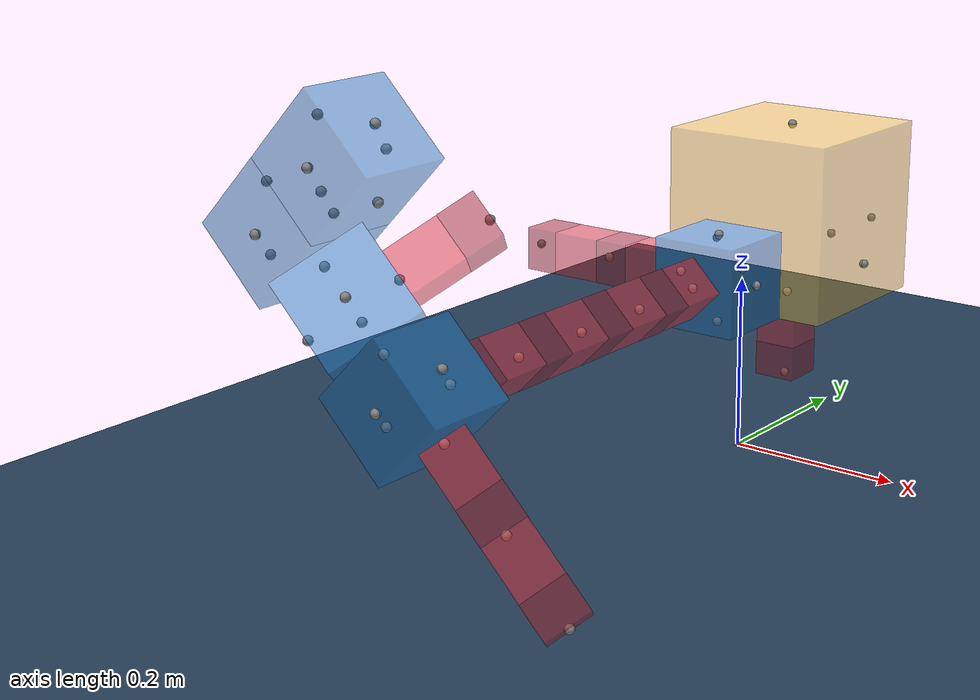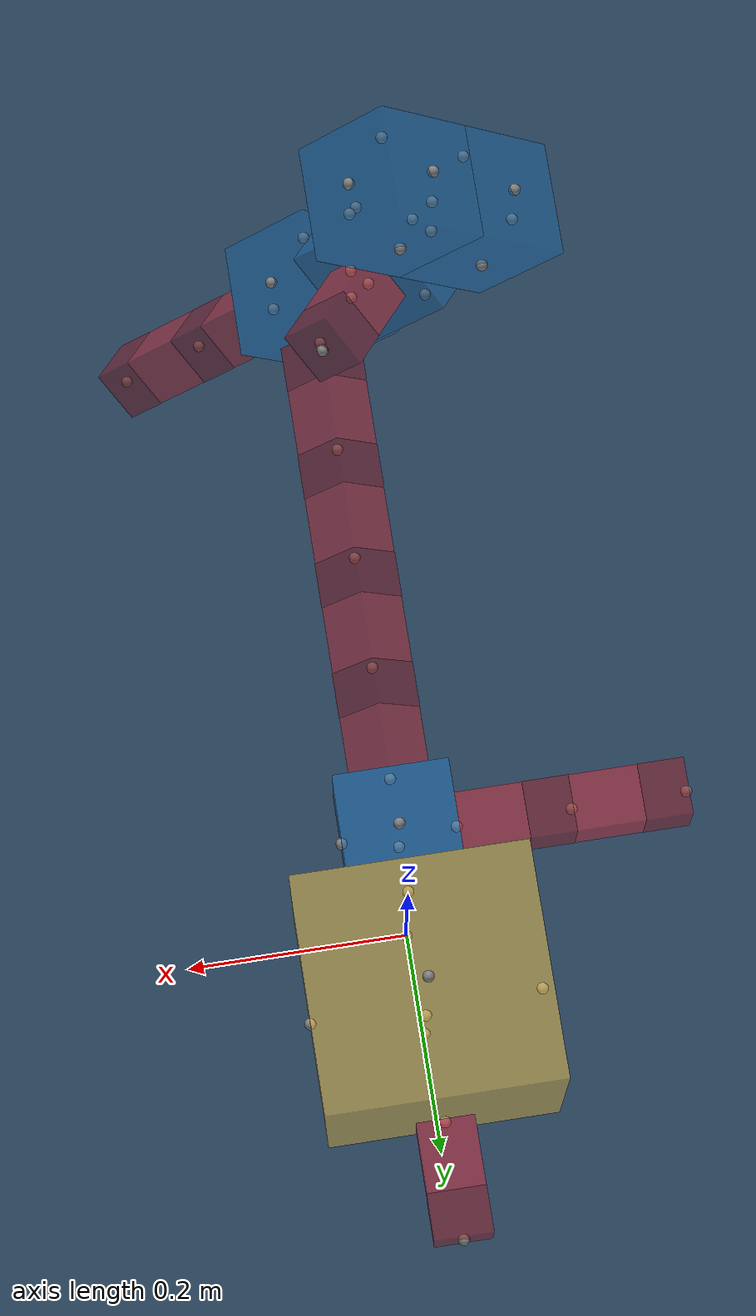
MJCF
<mujoco model="Simple Flat World">
  <compiler angle="radian"/>

  <option integrator="implicitfast"/>

  <visual>
    <global offwidth="1280" offheight="960"/>
  </visual>

  <default>
    <default class="robot1_main">
      <default class="robot1_0-6-5-main"/>
      <default class="robot1_0-24-0-main"/>
      <default class="robot1_0-5-1-main"/>
      <default class="robot1_5-1-0-main"/>
      <default class="robot1_5-25-2-main"/>
      <default class="robot1_1-16-0-main"/>
      <default class="robot1_25-21-0-main"/>
      <default class="robot1_16-22-0-main"/>
      <default class="robot1_22-26-0-main"/>
      <default class="robot1_26-27-0-main"/>
      <default class="robot1_27-23-3-main"/>
      <default class="robot1_27-18-2-main"/>
      <default class="robot1_23-28-5-main"/>
      <default class="robot1_23-11-0-main"/>
      <default class="robot1_18-17-0-main"/>
      <default class="robot1_11-20-4-main"/>
    </default>
  </default>

  <asset>
    <texture type="2d" colorspace="auto" name="floor" builtin="checker" rgb1="0.1 0.2 0.3" rgb2="0.2 0.3 0.4" width="600" height="600"/>
    <material name="floor" texture="floor" texuniform="true" texrepeat="3 3"/>
  </asset>

  <worldbody>
    <site pos="0 0 0"/>
    <camera name="ortho-cam" pos="-5 0 5" quat="0.653281 0.270598 -0.270598 -0.653281" orthographic="true" fovy="5"/>
    <light name="light" pos="0 0 1" dir="0 0 -1" type="directional" castshadow="false"/>
    <body name="floor">
      <geom name="floor" size="5 5 0.5" type="plane" material="floor"/>
    </body>
    <body name="robot1_world" pos="0 0 0.261851">
      <joint type="free"/>
      <body name="robot1_core">
        <geom name="robot1_core" size="0.1 0.1 0.1" pos="0 0.1 0" type="box" mass="1" rgba="0.992157 0.792157 0.25098 0.5"/>
        <site name="robot1_core-front" pos="0 0.2 -0.05"/>
        <site name="robot1_core-back" pos="0 0 -0.05" quat="0 0 0 1"/>
        <site name="robot1_core-left" pos="-0.1 0.1 -0.05" quat="0.707107 0 0 0.707107"/>
        <site name="robot1_core-right" pos="0.1 0.1 -0.05" quat="-0.707107 0 0 0.707107"/>
        <site name="robot1_core-top" pos="0 0.1 0.1" quat="0.707107 0.707107 0 0"/>
        <site name="robot1_core-bottom" pos="0 0.1 -0.1" quat="0 0 -0.707107 0.707107"/>
        <body name="robot1_0-6-5-hinge" pos="0 0.1 -0.1" quat="0 0 -0.707107 0.707107">
          <body name="robot1_0-6-5-stator" pos="0 0.03 0">
            <geom name="robot1_0-6-5-stator" size="0.02475 0.0297 0.02475" type="box" mass="0.02" rgba="0.87451 0.160784 0.207843 0.5"/>
          </body>
          <body name="robot1_0-6-5-rotor" pos="0 0.08 0">
            <joint name="robot1_0-6-5-servo" pos="0 -0.02 0" axis="0 0 1"/>
            <geom name="robot1_0-6-5-rotor" size="0.025 0.02 0.025" type="box" mass="0.04" rgba="0.627451 0.0941176 0.129412 0.5"/>
            <site name="robot1_0-6-5-hinge-front" pos="0 0.02 0"/>
          </body>
        </body>
        <body name="robot1_0-24-0-hinge" pos="0 0.2 -0.05" quat="0 0 1 0">
          <body name="robot1_0-24-0-stator" pos="0 0.03 0">
            <geom name="robot1_0-24-0-stator" size="0.02475 0.0297 0.02475" type="box" mass="0.02" rgba="0.87451 0.160784 0.207843 0.5"/>
          </body>
          <body name="robot1_0-24-0-rotor" pos="0 0.08 0">
            <joint name="robot1_0-24-0-servo" pos="0 -0.02 0" axis="0 0 1"/>
            <geom name="robot1_0-24-0-rotor" size="0.025 0.02 0.025" type="box" mass="0.04" rgba="0.627451 0.0941176 0.129412 0.5"/>
            <site name="robot1_0-24-0-hinge-front" pos="0 0.02 0"/>
          </body>
        </body>
        <body name="robot1_0-5-1-brick" pos="0 0 -0.05" quat="0 0 0 1">
          <geom name="robot1_0-5-1-brick" size="0.05 0.05 0.05" pos="0 0.05 0" type="box" mass="0.055" rgba="0.109804 0.466667 0.764706 0.5"/>
          <site name="robot1_0-5-1-brick-front" pos="0 0.1 0"/>
          <site name="robot1_0-5-1-brick-left" pos="-0.05 0.05 0" quat="0.707107 0 0 0.707107"/>
          <site name="robot1_0-5-1-brick-right" pos="0.05 0.05 0" quat="-0.707107 0 0 0.707107"/>
          <site name="robot1_0-5-1-brick-top" pos="0 0.05 0.05" quat="0.707107 0.707107 0 0"/>
          <site name="robot1_0-5-1-brick-bottom" pos="0 0.05 -0.05" quat="0 0 -0.707107 0.707107"/>
          <body name="robot1_5-1-0-hinge" pos="0 0.1 0" quat="-0.923785 0 0.382911 0">
            <body name="robot1_5-1-0-stator" pos="0 0.03 0">
              <geom name="robot1_5-1-0-stator" size="0.02475 0.0297 0.02475" type="box" mass="0.02" rgba="0.87451 0.160784 0.207843 0.5"/>
            </body>
            <body name="robot1_5-1-0-rotor" pos="0 0.08 0">
              <joint name="robot1_5-1-0-servo" pos="0 -0.02 0" axis="0 0 1"/>
              <geom name="robot1_5-1-0-rotor" size="0.025 0.02 0.025" type="box" mass="0.04" rgba="0.627451 0.0941176 0.129412 0.5"/>
              <site name="robot1_5-1-0-hinge-front" pos="0 0.02 0"/>
              <body name="robot1_1-16-0-hinge" pos="0 0.02 0" quat="0 0 1 0">
                <body name="robot1_1-16-0-stator" pos="0 0.03 0">
                  <geom name="robot1_1-16-0-stator" size="0.02475 0.0297 0.02475" type="box" mass="0.02" rgba="0.87451 0.160784 0.207843 0.5"/>
                </body>
                <body name="robot1_1-16-0-rotor" pos="0 0.08 0">
                  <joint name="robot1_1-16-0-servo" pos="0 -0.02 0" axis="0 0 1"/>
                  <geom name="robot1_1-16-0-rotor" size="0.025 0.02 0.025" type="box" mass="0.04" rgba="0.627451 0.0941176 0.129412 0.5"/>
                  <site name="robot1_1-16-0-hinge-front" pos="0 0.02 0"/>
                  <body name="robot1_16-22-0-hinge" pos="0 0.02 0" quat="0 0 1 0">
                    <body name="robot1_16-22-0-stator" pos="0 0.03 0">
                      <geom name="robot1_16-22-0-stator" size="0.02475 0.0297 0.02475" type="box" mass="0.02" rgba="0.87451 0.160784 0.207843 0.5"/>
                    </body>
                    <body name="robot1_16-22-0-rotor" pos="0 0.08 0">
                      <joint name="robot1_16-22-0-servo" pos="0 -0.02 0" axis="0 0 1"/>
                      <geom name="robot1_16-22-0-rotor" size="0.025 0.02 0.025" type="box" mass="0.04" rgba="0.627451 0.0941176 0.129412 0.5"/>
                      <site name="robot1_16-22-0-hinge-front" pos="0 0.02 0"/>
                      <body name="robot1_22-26-0-hinge" pos="0 0.02 0" quat="0.707107 0 0.707107 0">
                        <body name="robot1_22-26-0-stator" pos="0 0.03 0">
                          <geom name="robot1_22-26-0-stator" size="0.02475 0.0297 0.02475" type="box" mass="0.02" rgba="0.87451 0.160784 0.207843 0.5"/>
                        </body>
                        <body name="robot1_22-26-0-rotor" pos="0 0.08 0">
                          <joint name="robot1_22-26-0-servo" pos="0 -0.02 0" axis="0 0 1"/>
                          <geom name="robot1_22-26-0-rotor" size="0.025 0.02 0.025" type="box" mass="0.04" rgba="0.627451 0.0941176 0.129412 0.5"/>
                          <site name="robot1_22-26-0-hinge-front" pos="0 0.02 0"/>
                          <body name="robot1_26-27-0-brick" pos="0 0.02 0" quat="0.707107 0 0.707107 0">
                            <geom name="robot1_26-27-0-brick" size="0.05 0.05 0.05" pos="0 0.05 0" type="box" mass="0.055" rgba="0.109804 0.466667 0.764706 0.5"/>
                            <site name="robot1_26-27-0-brick-front" pos="0 0.1 0"/>
                            <site name="robot1_26-27-0-brick-left" pos="-0.05 0.05 0" quat="0.707107 0 0 0.707107"/>
                            <site name="robot1_26-27-0-brick-right" pos="0.05 0.05 0" quat="-0.707107 0 0 0.707107"/>
                            <site name="robot1_26-27-0-brick-top" pos="0 0.05 0.05" quat="0.707107 0.707107 0 0"/>
                            <site name="robot1_26-27-0-brick-bottom" pos="0 0.05 -0.05" quat="0 0 -0.707107 0.707107"/>
                            <body name="robot1_27-23-3-brick" pos="-0.05 0.05 0" quat="0.653215 -0.270759 0.270759 0.653215">
                              <geom name="robot1_27-23-3-brick" size="0.05 0.05 0.05" pos="0 0.05 0" type="box" mass="0.055" rgba="0.109804 0.466667 0.764706 0.5"/>
                              <site name="robot1_27-23-3-brick-front" pos="0 0.1 0"/>
                              <site name="robot1_27-23-3-brick-left" pos="-0.05 0.05 0" quat="0.707107 0 0 0.707107"/>
                              <site name="robot1_27-23-3-brick-right" pos="0.05 0.05 0" quat="-0.707107 0 0 0.707107"/>
                              <site name="robot1_27-23-3-brick-top" pos="0 0.05 0.05" quat="0.707107 0.707107 0 0"/>
                              <site name="robot1_27-23-3-brick-bottom" pos="0 0.05 -0.05" quat="0 0 -0.707107 0.707107"/>
                              <body name="robot1_23-28-5-hinge" pos="0 0.05 -0.05" quat="0.5 -0.5 -0.5 0.5">
                                <body name="robot1_23-28-5-stator" pos="0 0.03 0">
                                  <geom name="robot1_23-28-5-stator" size="0.02475 0.0297 0.02475" type="box" mass="0.02" rgba="0.87451 0.160784 0.207843 0.5"/>
                                </body>
                                <body name="robot1_23-28-5-rotor" pos="0 0.08 0">
                                  <joint name="robot1_23-28-5-servo" pos="0 -0.02 0" axis="0 0 1"/>
                                  <geom name="robot1_23-28-5-rotor" size="0.025 0.02 0.025" type="box" mass="0.04" rgba="0.627451 0.0941176 0.129412 0.5"/>
                                  <site name="robot1_23-28-5-hinge-front" pos="0 0.02 0"/>
                                </body>
                              </body>
                              <body name="robot1_23-11-0-brick" pos="0 0.1 0" quat="0.382911 0 0.923785 0">
                                <geom name="robot1_23-11-0-brick" size="0.05 0.05 0.05" pos="0 0.05 0" type="box" mass="0.055" rgba="0.109804 0.466667 0.764706 0.5"/>
                                <site name="robot1_23-11-0-brick-front" pos="0 0.1 0"/>
                                <site name="robot1_23-11-0-brick-left" pos="-0.05 0.05 0" quat="0.707107 0 0 0.707107"/>
                                <site name="robot1_23-11-0-brick-right" pos="0.05 0.05 0" quat="-0.707107 0 0 0.707107"/>
                                <site name="robot1_23-11-0-brick-top" pos="0 0.05 0.05" quat="0.707107 0.707107 0 0"/>
                                <site name="robot1_23-11-0-brick-bottom" pos="0 0.05 -0.05" quat="0 0 -0.707107 0.707107"/>
                                <body name="robot1_11-20-4-brick" pos="0 0.05 0.05" quat="0.707107 0.707107 0 0">
                                  <geom name="robot1_11-20-4-brick" size="0.05 0.05 0.05" pos="0 0.05 0" type="box" mass="0.055" rgba="0.109804 0.466667 0.764706 0.5"/>
                                  <site name="robot1_11-20-4-brick-front" pos="0 0.1 0"/>
                                  <site name="robot1_11-20-4-brick-left" pos="-0.05 0.05 0" quat="0.707107 0 0 0.707107"/>
                                  <site name="robot1_11-20-4-brick-right" pos="0.05 0.05 0" quat="-0.707107 0 0 0.707107"/>
                                  <site name="robot1_11-20-4-brick-top" pos="0 0.05 0.05" quat="0.707107 0.707107 0 0"/>
                                  <site name="robot1_11-20-4-brick-bottom" pos="0 0.05 -0.05" quat="0 0 -0.707107 0.707107"/>
                                </body>
                              </body>
                            </body>
                            <body name="robot1_27-18-2-hinge" pos="0.05 0.05 0" quat="-0.653215 -0.270759 -0.270759 0.653215">
                              <body name="robot1_27-18-2-stator" pos="0 0.03 0">
                                <geom name="robot1_27-18-2-stator" size="0.02475 0.0297 0.02475" type="box" mass="0.02" rgba="0.87451 0.160784 0.207843 0.5"/>
                              </body>
                              <body name="robot1_27-18-2-rotor" pos="0 0.08 0">
                                <joint name="robot1_27-18-2-servo" pos="0 -0.02 0" axis="0 0 1"/>
                                <geom name="robot1_27-18-2-rotor" size="0.025 0.02 0.025" type="box" mass="0.04" rgba="0.627451 0.0941176 0.129412 0.5"/>
                                <site name="robot1_27-18-2-hinge-front" pos="0 0.02 0"/>
                                <body name="robot1_18-17-0-hinge" pos="0 0.02 0">
                                  <body name="robot1_18-17-0-stator" pos="0 0.03 0">
                                    <geom name="robot1_18-17-0-stator" size="0.02475 0.0297 0.02475" type="box" mass="0.02" rgba="0.87451 0.160784 0.207843 0.5"/>
                                  </body>
                                  <body name="robot1_18-17-0-rotor" pos="0 0.08 0">
                                    <joint name="robot1_18-17-0-servo" pos="0 -0.02 0" axis="0 0 1"/>
                                    <geom name="robot1_18-17-0-rotor" size="0.025 0.02 0.025" type="box" mass="0.04" rgba="0.627451 0.0941176 0.129412 0.5"/>
                                    <site name="robot1_18-17-0-hinge-front" pos="0 0.02 0"/>
                                  </body>
                                </body>
                              </body>
                            </body>
                          </body>
                        </body>
                      </body>
                    </body>
                  </body>
                </body>
              </body>
            </body>
          </body>
          <body name="robot1_5-25-2-hinge" pos="0.05 0.05 0" quat="-0.5 -0.5 -0.5 0.5">
            <body name="robot1_5-25-2-stator" pos="0 0.03 0">
              <geom name="robot1_5-25-2-stator" size="0.02475 0.0297 0.02475" type="box" mass="0.02" rgba="0.87451 0.160784 0.207843 0.5"/>
            </body>
            <body name="robot1_5-25-2-rotor" pos="0 0.08 0">
              <joint name="robot1_5-25-2-servo" pos="0 -0.02 0" axis="0 0 1"/>
              <geom name="robot1_5-25-2-rotor" size="0.025 0.02 0.025" type="box" mass="0.04" rgba="0.627451 0.0941176 0.129412 0.5"/>
              <site name="robot1_5-25-2-hinge-front" pos="0 0.02 0"/>
              <body name="robot1_25-21-0-hinge" pos="0 0.02 0">
                <body name="robot1_25-21-0-stator" pos="0 0.03 0">
                  <geom name="robot1_25-21-0-stator" size="0.02475 0.0297 0.02475" type="box" mass="0.02" rgba="0.87451 0.160784 0.207843 0.5"/>
                </body>
                <body name="robot1_25-21-0-rotor" pos="0 0.08 0">
                  <joint name="robot1_25-21-0-servo" pos="0 -0.02 0" axis="0 0 1"/>
                  <geom name="robot1_25-21-0-rotor" size="0.025 0.02 0.025" type="box" mass="0.04" rgba="0.627451 0.0941176 0.129412 0.5"/>
                  <site name="robot1_25-21-0-hinge-front" pos="0 0.02 0"/>
                </body>
              </body>
            </body>
          </body>
        </body>
      </body>
    </body>
  </worldbody>

  <contact>
    <exclude body1="robot1_0-6-5-stator" body2="robot1_0-6-5-rotor"/>
    <exclude body1="robot1_0-24-0-stator" body2="robot1_0-24-0-rotor"/>
    <exclude body1="robot1_5-1-0-stator" body2="robot1_5-1-0-rotor"/>
    <exclude body1="robot1_1-16-0-stator" body2="robot1_1-16-0-rotor"/>
    <exclude body1="robot1_16-22-0-stator" body2="robot1_16-22-0-rotor"/>
    <exclude body1="robot1_22-26-0-stator" body2="robot1_22-26-0-rotor"/>
    <exclude body1="robot1_23-28-5-stator" body2="robot1_23-28-5-rotor"/>
    <exclude body1="robot1_27-18-2-stator" body2="robot1_27-18-2-rotor"/>
    <exclude body1="robot1_18-17-0-stator" body2="robot1_18-17-0-rotor"/>
    <exclude body1="robot1_5-25-2-stator" body2="robot1_5-25-2-rotor"/>
    <exclude body1="robot1_25-21-0-stator" body2="robot1_25-21-0-rotor"/>
  </contact>

  <actuator>
    <general name="robot1_0-6-5-servo" joint="robot1_0-6-5-servo" ctrlrange="-1.5708 1.5708" dynprm="0 0 0 0 0 0 0 0 0 0" biastype="affine" biasprm="0 -1 -1"/>
    <general name="robot1_0-24-0-servo" joint="robot1_0-24-0-servo" ctrlrange="-1.5708 1.5708" dynprm="0 0 0 0 0 0 0 0 0 0" biastype="affine" biasprm="0 -1 -1"/>
    <general name="robot1_5-1-0-servo" joint="robot1_5-1-0-servo" ctrlrange="-1.5708 1.5708" dynprm="0 0 0 0 0 0 0 0 0 0" biastype="affine" biasprm="0 -1 -1"/>
    <general name="robot1_5-25-2-servo" joint="robot1_5-25-2-servo" ctrlrange="-1.5708 1.5708" dynprm="0 0 0 0 0 0 0 0 0 0" biastype="affine" biasprm="0 -1 -1"/>
    <general name="robot1_1-16-0-servo" joint="robot1_1-16-0-servo" ctrlrange="-1.5708 1.5708" dynprm="0 0 0 0 0 0 0 0 0 0" biastype="affine" biasprm="0 -1 -1"/>
    <general name="robot1_25-21-0-servo" joint="robot1_25-21-0-servo" ctrlrange="-1.5708 1.5708" dynprm="0 0 0 0 0 0 0 0 0 0" biastype="affine" biasprm="0 -1 -1"/>
    <general name="robot1_16-22-0-servo" joint="robot1_16-22-0-servo" ctrlrange="-1.5708 1.5708" dynprm="0 0 0 0 0 0 0 0 0 0" biastype="affine" biasprm="0 -1 -1"/>
    <general name="robot1_22-26-0-servo" joint="robot1_22-26-0-servo" ctrlrange="-1.5708 1.5708" dynprm="0 0 0 0 0 0 0 0 0 0" biastype="affine" biasprm="0 -1 -1"/>
    <general name="robot1_27-18-2-servo" joint="robot1_27-18-2-servo" ctrlrange="-1.5708 1.5708" dynprm="0 0 0 0 0 0 0 0 0 0" biastype="affine" biasprm="0 -1 -1"/>
    <general name="robot1_23-28-5-servo" joint="robot1_23-28-5-servo" ctrlrange="-1.5708 1.5708" dynprm="0 0 0 0 0 0 0 0 0 0" biastype="affine" biasprm="0 -1 -1"/>
    <general name="robot1_18-17-0-servo" joint="robot1_18-17-0-servo" ctrlrange="-1.5708 1.5708" dynprm="0 0 0 0 0 0 0 0 0 0" biastype="affine" biasprm="0 -1 -1"/>
  </actuator>
</mujoco>
